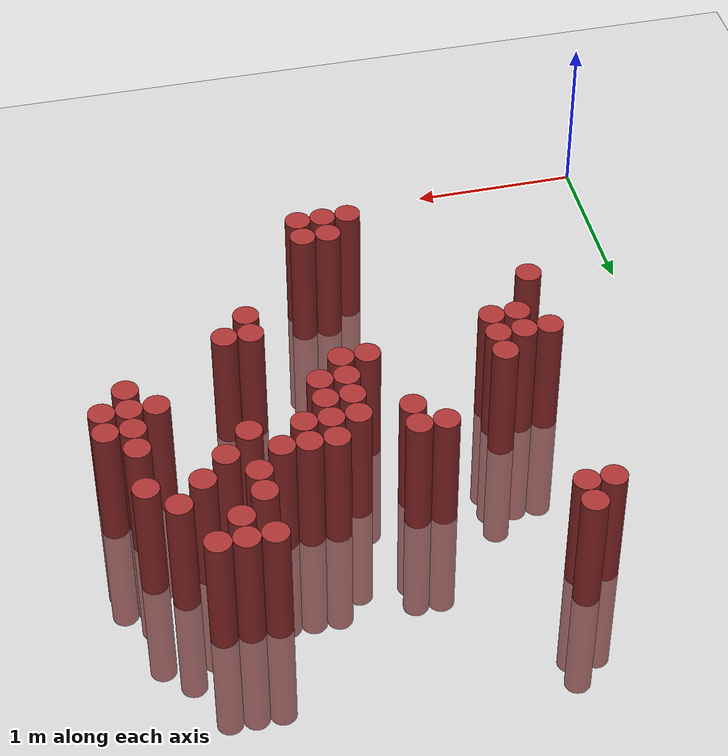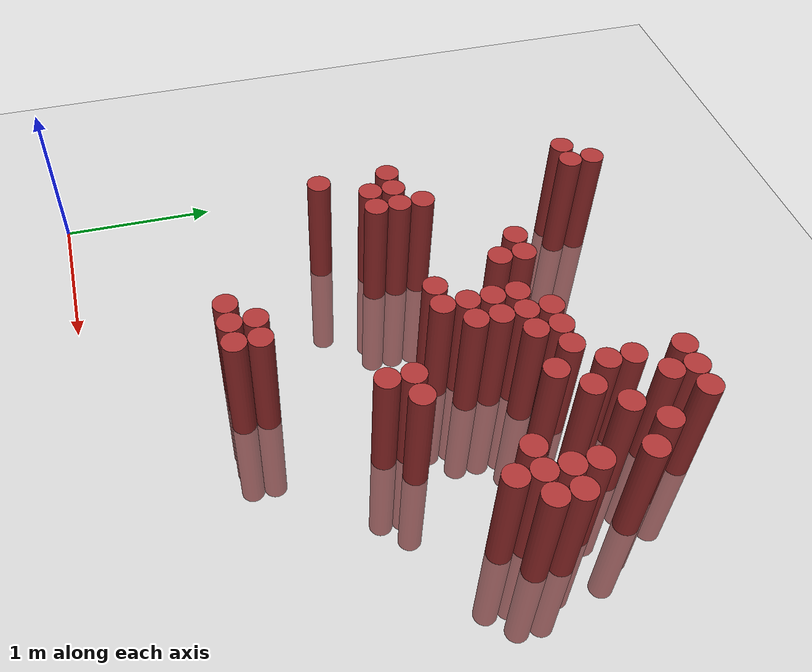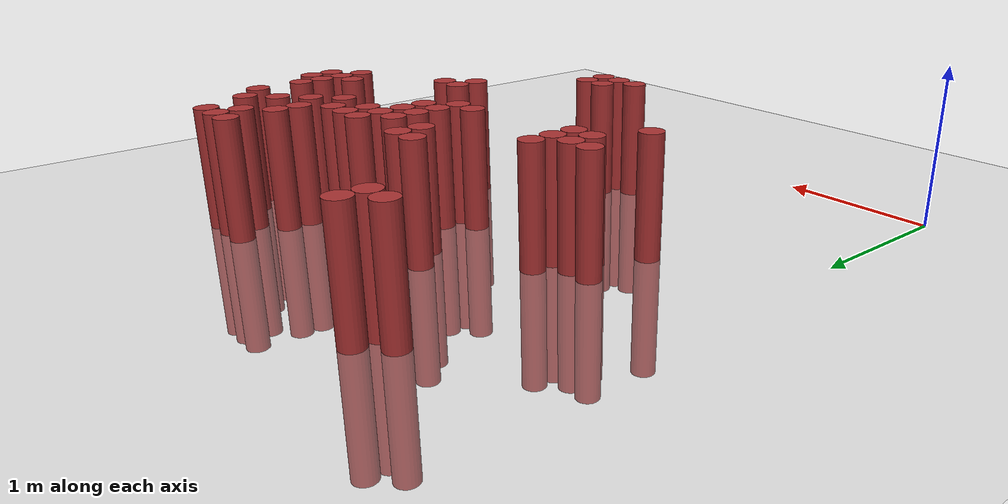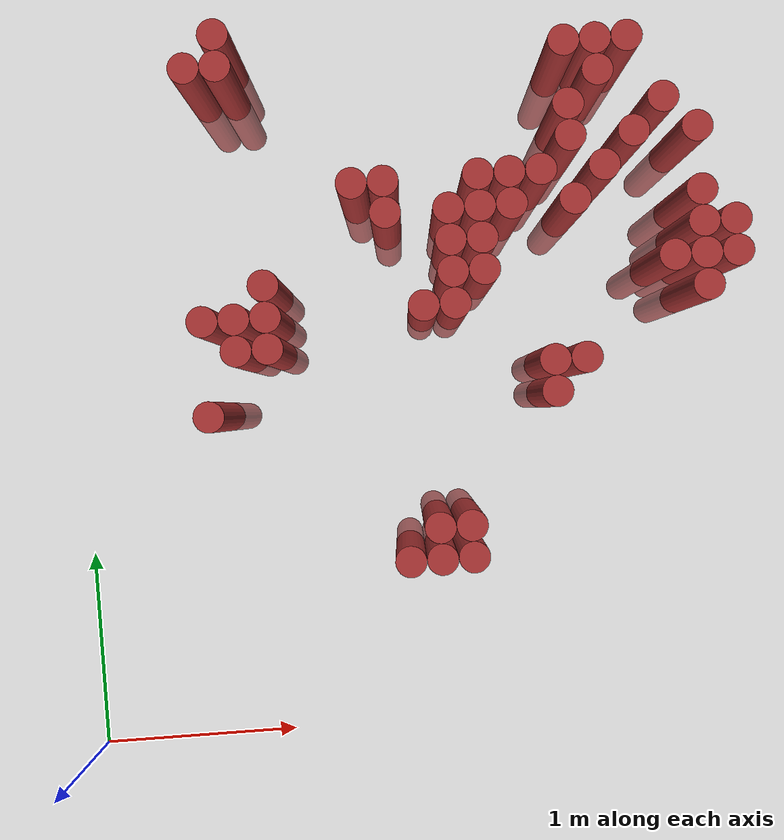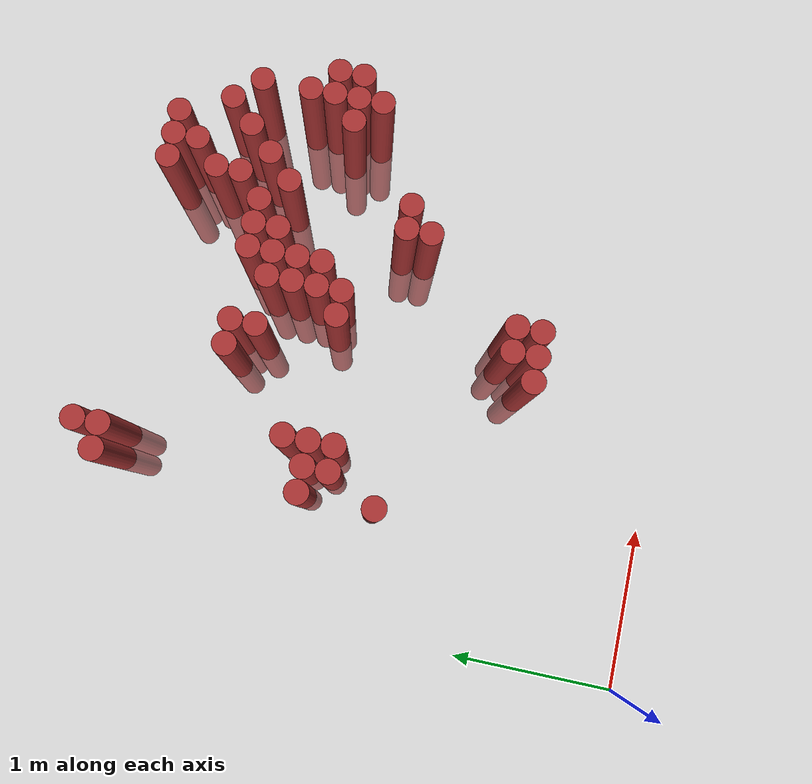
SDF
<sdf version="1.6">
 <world name="default">
  <model name="ground_plane">
   <static>1</static>
   <link name="link">
    <collision name="collision">
     <geometry><plane><normal>0 0 1</normal><size>100 100</size></plane></geometry>
     <surface><friction><ode><mu>100</mu><mu2>50</mu2></ode></friction></surface>
    </collision>
    <visual name="visual">
     <cast_shadows>0</cast_shadows>
     <geometry><plane><normal>0 0 1</normal><size>100 100</size></plane></geometry>
     <material>
      <script><uri>file://media/materials/scripts/gazebo.material</uri><name>Gazebo/Grey</name></script>
     </material>
    </visual>
   </link>
  </model>
  <model name="unit_cylinder_385">
   <static>1</static>
   <pose>0.775000 1.675000 0.000000 0.000000 0.000000 0.000000</pose>
   <link name="link">
    <inertial>
     <mass>1</mass>
     <inertia><ixx>0.145833</ixx><ixy>0</ixy><ixz>0</ixz><iyy>0.145833</iyy><iyz>0</iyz><izz>0.125</izz></inertia>
    </inertial>
    <collision name="collision">
     <geometry><cylinder><radius>0.075000</radius><length>1.5</length></cylinder></geometry>
    </collision>
    <visual name="visual">
     <geometry><cylinder><radius>0.075000</radius><length>1.5</length></cylinder></geometry>
     <material>
      <ambient>0.648000 0.192000 0.192000 1</ambient>
      <diffuse>0.648000 0.192000 0.192000 1</diffuse>
     </material>
     <material>
      <script><name>Gazebo/Grey</name><uri>file://media/materials/scripts/gazebo.material</uri></script>
     </material>
    </visual>
   </link>
  </model>
  <model name="unit_cylinder_386">
   <static>1</static>
   <pose>0.775000 2.125000 0.000000 0.000000 0.000000 0.000000</pose>
   <link name="link">
    <inertial>
     <mass>1</mass>
     <inertia><ixx>0.145833</ixx><ixy>0</ixy><ixz>0</ixz><iyy>0.145833</iyy><iyz>0</iyz><izz>0.125</izz></inertia>
    </inertial>
    <collision name="collision">
     <geometry><cylinder><radius>0.075000</radius><length>1.5</length></cylinder></geometry>
    </collision>
    <visual name="visual">
     <geometry><cylinder><radius>0.075000</radius><length>1.5</length></cylinder></geometry>
     <material>
      <ambient>0.648000 0.192000 0.192000 1</ambient>
      <diffuse>0.648000 0.192000 0.192000 1</diffuse>
     </material>
     <material>
      <script><name>Gazebo/Grey</name><uri>file://media/materials/scripts/gazebo.material</uri></script>
     </material>
    </visual>
   </link>
  </model>
  <model name="unit_cylinder_387">
   <static>1</static>
   <pose>0.775000 3.325000 0.000000 0.000000 0.000000 0.000000</pose>
   <link name="link">
    <inertial>
     <mass>1</mass>
     <inertia><ixx>0.145833</ixx><ixy>0</ixy><ixz>0</ixz><iyy>0.145833</iyy><iyz>0</iyz><izz>0.125</izz></inertia>
    </inertial>
    <collision name="collision">
     <geometry><cylinder><radius>0.075000</radius><length>1.5</length></cylinder></geometry>
    </collision>
    <visual name="visual">
     <geometry><cylinder><radius>0.075000</radius><length>1.5</length></cylinder></geometry>
     <material>
      <ambient>0.648000 0.192000 0.192000 1</ambient>
      <diffuse>0.648000 0.192000 0.192000 1</diffuse>
     </material>
     <material>
      <script><name>Gazebo/Grey</name><uri>file://media/materials/scripts/gazebo.material</uri></script>
     </material>
    </visual>
   </link>
  </model>
  <model name="unit_cylinder_393">
   <static>1</static>
   <pose>0.925000 1.975000 0.000000 0.000000 0.000000 0.000000</pose>
   <link name="link">
    <inertial>
     <mass>1</mass>
     <inertia><ixx>0.145833</ixx><ixy>0</ixy><ixz>0</ixz><iyy>0.145833</iyy><iyz>0</iyz><izz>0.125</izz></inertia>
    </inertial>
    <collision name="collision">
     <geometry><cylinder><radius>0.075000</radius><length>1.5</length></cylinder></geometry>
    </collision>
    <visual name="visual">
     <geometry><cylinder><radius>0.075000</radius><length>1.5</length></cylinder></geometry>
     <material>
      <ambient>0.648000 0.192000 0.192000 1</ambient>
      <diffuse>0.648000 0.192000 0.192000 1</diffuse>
     </material>
     <material>
      <script><name>Gazebo/Grey</name><uri>file://media/materials/scripts/gazebo.material</uri></script>
     </material>
    </visual>
   </link>
  </model>
  <model name="unit_cylinder_394">
   <static>1</static>
   <pose>0.925000 2.125000 0.000000 0.000000 0.000000 0.000000</pose>
   <link name="link">
    <inertial>
     <mass>1</mass>
     <inertia><ixx>0.145833</ixx><ixy>0</ixy><ixz>0</ixz><iyy>0.145833</iyy><iyz>0</iyz><izz>0.125</izz></inertia>
    </inertial>
    <collision name="collision">
     <geometry><cylinder><radius>0.075000</radius><length>1.5</length></cylinder></geometry>
    </collision>
    <visual name="visual">
     <geometry><cylinder><radius>0.075000</radius><length>1.5</length></cylinder></geometry>
     <material>
      <ambient>0.648000 0.192000 0.192000 1</ambient>
      <diffuse>0.648000 0.192000 0.192000 1</diffuse>
     </material>
     <material>
      <script><name>Gazebo/Grey</name><uri>file://media/materials/scripts/gazebo.material</uri></script>
     </material>
    </visual>
   </link>
  </model>
  <model name="unit_cylinder_395">
   <static>1</static>
   <pose>0.925000 3.325000 0.000000 0.000000 0.000000 0.000000</pose>
   <link name="link">
    <inertial>
     <mass>1</mass>
     <inertia><ixx>0.145833</ixx><ixy>0</ixy><ixz>0</ixz><iyy>0.145833</iyy><iyz>0</iyz><izz>0.125</izz></inertia>
    </inertial>
    <collision name="collision">
     <geometry><cylinder><radius>0.075000</radius><length>1.5</length></cylinder></geometry>
    </collision>
    <visual name="visual">
     <geometry><cylinder><radius>0.075000</radius><length>1.5</length></cylinder></geometry>
     <material>
      <ambient>0.648000 0.192000 0.192000 1</ambient>
      <diffuse>0.648000 0.192000 0.192000 1</diffuse>
     </material>
     <material>
      <script><name>Gazebo/Grey</name><uri>file://media/materials/scripts/gazebo.material</uri></script>
     </material>
    </visual>
   </link>
  </model>
  <model name="unit_cylinder_396">
   <static>1</static>
   <pose>0.925000 3.475000 0.000000 0.000000 0.000000 0.000000</pose>
   <link name="link">
    <inertial>
     <mass>1</mass>
     <inertia><ixx>0.145833</ixx><ixy>0</ixy><ixz>0</ixz><iyy>0.145833</iyy><iyz>0</iyz><izz>0.125</izz></inertia>
    </inertial>
    <collision name="collision">
     <geometry><cylinder><radius>0.075000</radius><length>1.5</length></cylinder></geometry>
    </collision>
    <visual name="visual">
     <geometry><cylinder><radius>0.075000</radius><length>1.5</length></cylinder></geometry>
     <material>
      <ambient>0.648000 0.192000 0.192000 1</ambient>
      <diffuse>0.648000 0.192000 0.192000 1</diffuse>
     </material>
     <material>
      <script><name>Gazebo/Grey</name><uri>file://media/materials/scripts/gazebo.material</uri></script>
     </material>
    </visual>
   </link>
  </model>
  <model name="unit_cylinder_405">
   <static>1</static>
   <pose>1.075000 1.975000 0.000000 0.000000 0.000000 0.000000</pose>
   <link name="link">
    <inertial>
     <mass>1</mass>
     <inertia><ixx>0.145833</ixx><ixy>0</ixy><ixz>0</ixz><iyy>0.145833</iyy><iyz>0</iyz><izz>0.125</izz></inertia>
    </inertial>
    <collision name="collision">
     <geometry><cylinder><radius>0.075000</radius><length>1.5</length></cylinder></geometry>
    </collision>
    <visual name="visual">
     <geometry><cylinder><radius>0.075000</radius><length>1.5</length></cylinder></geometry>
     <material>
      <ambient>0.648000 0.192000 0.192000 1</ambient>
      <diffuse>0.648000 0.192000 0.192000 1</diffuse>
     </material>
     <material>
      <script><name>Gazebo/Grey</name><uri>file://media/materials/scripts/gazebo.material</uri></script>
     </material>
    </visual>
   </link>
  </model>
  <model name="unit_cylinder_406">
   <static>1</static>
   <pose>1.075000 2.125000 0.000000 0.000000 0.000000 0.000000</pose>
   <link name="link">
    <inertial>
     <mass>1</mass>
     <inertia><ixx>0.145833</ixx><ixy>0</ixy><ixz>0</ixz><iyy>0.145833</iyy><iyz>0</iyz><izz>0.125</izz></inertia>
    </inertial>
    <collision name="collision">
     <geometry><cylinder><radius>0.075000</radius><length>1.5</length></cylinder></geometry>
    </collision>
    <visual name="visual">
     <geometry><cylinder><radius>0.075000</radius><length>1.5</length></cylinder></geometry>
     <material>
      <ambient>0.648000 0.192000 0.192000 1</ambient>
      <diffuse>0.648000 0.192000 0.192000 1</diffuse>
     </material>
     <material>
      <script><name>Gazebo/Grey</name><uri>file://media/materials/scripts/gazebo.material</uri></script>
     </material>
    </visual>
   </link>
  </model>
  <model name="unit_cylinder_407">
   <static>1</static>
   <pose>1.075000 2.275000 0.000000 0.000000 0.000000 0.000000</pose>
   <link name="link">
    <inertial>
     <mass>1</mass>
     <inertia><ixx>0.145833</ixx><ixy>0</ixy><ixz>0</ixz><iyy>0.145833</iyy><iyz>0</iyz><izz>0.125</izz></inertia>
    </inertial>
    <collision name="collision">
     <geometry><cylinder><radius>0.075000</radius><length>1.5</length></cylinder></geometry>
    </collision>
    <visual name="visual">
     <geometry><cylinder><radius>0.075000</radius><length>1.5</length></cylinder></geometry>
     <material>
      <ambient>0.648000 0.192000 0.192000 1</ambient>
      <diffuse>0.648000 0.192000 0.192000 1</diffuse>
     </material>
     <material>
      <script><name>Gazebo/Grey</name><uri>file://media/materials/scripts/gazebo.material</uri></script>
     </material>
    </visual>
   </link>
  </model>
  <model name="unit_cylinder_434">
   <static>1</static>
   <pose>1.525000 2.725000 0.000000 0.000000 0.000000 0.000000</pose>
   <link name="link">
    <inertial>
     <mass>1</mass>
     <inertia><ixx>0.145833</ixx><ixy>0</ixy><ixz>0</ixz><iyy>0.145833</iyy><iyz>0</iyz><izz>0.125</izz></inertia>
    </inertial>
    <collision name="collision">
     <geometry><cylinder><radius>0.075000</radius><length>1.5</length></cylinder></geometry>
    </collision>
    <visual name="visual">
     <geometry><cylinder><radius>0.075000</radius><length>1.5</length></cylinder></geometry>
     <material>
      <ambient>0.648000 0.192000 0.192000 1</ambient>
      <diffuse>0.648000 0.192000 0.192000 1</diffuse>
     </material>
     <material>
      <script><name>Gazebo/Grey</name><uri>file://media/materials/scripts/gazebo.material</uri></script>
     </material>
    </visual>
   </link>
  </model>
  <model name="unit_cylinder_441">
   <static>1</static>
   <pose>1.675000 0.925000 0.000000 0.000000 0.000000 0.000000</pose>
   <link name="link">
    <inertial>
     <mass>1</mass>
     <inertia><ixx>0.145833</ixx><ixy>0</ixy><ixz>0</ixz><iyy>0.145833</iyy><iyz>0</iyz><izz>0.125</izz></inertia>
    </inertial>
    <collision name="collision">
     <geometry><cylinder><radius>0.075000</radius><length>1.5</length></cylinder></geometry>
    </collision>
    <visual name="visual">
     <geometry><cylinder><radius>0.075000</radius><length>1.5</length></cylinder></geometry>
     <material>
      <ambient>0.648000 0.192000 0.192000 1</ambient>
      <diffuse>0.648000 0.192000 0.192000 1</diffuse>
     </material>
     <material>
      <script><name>Gazebo/Grey</name><uri>file://media/materials/scripts/gazebo.material</uri></script>
     </material>
    </visual>
   </link>
  </model>
  <model name="unit_cylinder_442">
   <static>1</static>
   <pose>1.675000 2.575000 0.000000 0.000000 0.000000 0.000000</pose>
   <link name="link">
    <inertial>
     <mass>1</mass>
     <inertia><ixx>0.145833</ixx><ixy>0</ixy><ixz>0</ixz><iyy>0.145833</iyy><iyz>0</iyz><izz>0.125</izz></inertia>
    </inertial>
    <collision name="collision">
     <geometry><cylinder><radius>0.075000</radius><length>1.5</length></cylinder></geometry>
    </collision>
    <visual name="visual">
     <geometry><cylinder><radius>0.075000</radius><length>1.5</length></cylinder></geometry>
     <material>
      <ambient>0.648000 0.192000 0.192000 1</ambient>
      <diffuse>0.648000 0.192000 0.192000 1</diffuse>
     </material>
     <material>
      <script><name>Gazebo/Grey</name><uri>file://media/materials/scripts/gazebo.material</uri></script>
     </material>
    </visual>
   </link>
  </model>
  <model name="unit_cylinder_443">
   <static>1</static>
   <pose>1.675000 2.725000 0.000000 0.000000 0.000000 0.000000</pose>
   <link name="link">
    <inertial>
     <mass>1</mass>
     <inertia><ixx>0.145833</ixx><ixy>0</ixy><ixz>0</ixz><iyy>0.145833</iyy><iyz>0</iyz><izz>0.125</izz></inertia>
    </inertial>
    <collision name="collision">
     <geometry><cylinder><radius>0.075000</radius><length>1.5</length></cylinder></geometry>
    </collision>
    <visual name="visual">
     <geometry><cylinder><radius>0.075000</radius><length>1.5</length></cylinder></geometry>
     <material>
      <ambient>0.648000 0.192000 0.192000 1</ambient>
      <diffuse>0.648000 0.192000 0.192000 1</diffuse>
     </material>
     <material>
      <script><name>Gazebo/Grey</name><uri>file://media/materials/scripts/gazebo.material</uri></script>
     </material>
    </visual>
   </link>
  </model>
  <model name="unit_cylinder_449">
   <static>1</static>
   <pose>1.825000 0.925000 0.000000 0.000000 0.000000 0.000000</pose>
   <link name="link">
    <inertial>
     <mass>1</mass>
     <inertia><ixx>0.145833</ixx><ixy>0</ixy><ixz>0</ixz><iyy>0.145833</iyy><iyz>0</iyz><izz>0.125</izz></inertia>
    </inertial>
    <collision name="collision">
     <geometry><cylinder><radius>0.075000</radius><length>1.5</length></cylinder></geometry>
    </collision>
    <visual name="visual">
     <geometry><cylinder><radius>0.075000</radius><length>1.5</length></cylinder></geometry>
     <material>
      <ambient>0.648000 0.192000 0.192000 1</ambient>
      <diffuse>0.648000 0.192000 0.192000 1</diffuse>
     </material>
     <material>
      <script><name>Gazebo/Grey</name><uri>file://media/materials/scripts/gazebo.material</uri></script>
     </material>
    </visual>
   </link>
  </model>
  <model name="unit_cylinder_450">
   <static>1</static>
   <pose>1.825000 1.075000 0.000000 0.000000 0.000000 0.000000</pose>
   <link name="link">
    <inertial>
     <mass>1</mass>
     <inertia><ixx>0.145833</ixx><ixy>0</ixy><ixz>0</ixz><iyy>0.145833</iyy><iyz>0</iyz><izz>0.125</izz></inertia>
    </inertial>
    <collision name="collision">
     <geometry><cylinder><radius>0.075000</radius><length>1.5</length></cylinder></geometry>
    </collision>
    <visual name="visual">
     <geometry><cylinder><radius>0.075000</radius><length>1.5</length></cylinder></geometry>
     <material>
      <ambient>0.648000 0.192000 0.192000 1</ambient>
      <diffuse>0.648000 0.192000 0.192000 1</diffuse>
     </material>
     <material>
      <script><name>Gazebo/Grey</name><uri>file://media/materials/scripts/gazebo.material</uri></script>
     </material>
    </visual>
   </link>
  </model>
  <model name="unit_cylinder_451">
   <static>1</static>
   <pose>1.825000 2.125000 0.000000 0.000000 0.000000 0.000000</pose>
   <link name="link">
    <inertial>
     <mass>1</mass>
     <inertia><ixx>0.145833</ixx><ixy>0</ixy><ixz>0</ixz><iyy>0.145833</iyy><iyz>0</iyz><izz>0.125</izz></inertia>
    </inertial>
    <collision name="collision">
     <geometry><cylinder><radius>0.075000</radius><length>1.5</length></cylinder></geometry>
    </collision>
    <visual name="visual">
     <geometry><cylinder><radius>0.075000</radius><length>1.5</length></cylinder></geometry>
     <material>
      <ambient>0.648000 0.192000 0.192000 1</ambient>
      <diffuse>0.648000 0.192000 0.192000 1</diffuse>
     </material>
     <material>
      <script><name>Gazebo/Grey</name><uri>file://media/materials/scripts/gazebo.material</uri></script>
     </material>
    </visual>
   </link>
  </model>
  <model name="unit_cylinder_458">
   <static>1</static>
   <pose>1.975000 0.925000 0.000000 0.000000 0.000000 0.000000</pose>
   <link name="link">
    <inertial>
     <mass>1</mass>
     <inertia><ixx>0.145833</ixx><ixy>0</ixy><ixz>0</ixz><iyy>0.145833</iyy><iyz>0</iyz><izz>0.125</izz></inertia>
    </inertial>
    <collision name="collision">
     <geometry><cylinder><radius>0.075000</radius><length>1.5</length></cylinder></geometry>
    </collision>
    <visual name="visual">
     <geometry><cylinder><radius>0.075000</radius><length>1.5</length></cylinder></geometry>
     <material>
      <ambient>0.648000 0.192000 0.192000 1</ambient>
      <diffuse>0.648000 0.192000 0.192000 1</diffuse>
     </material>
     <material>
      <script><name>Gazebo/Grey</name><uri>file://media/materials/scripts/gazebo.material</uri></script>
     </material>
    </visual>
   </link>
  </model>
  <model name="unit_cylinder_459">
   <static>1</static>
   <pose>1.975000 1.075000 0.000000 0.000000 0.000000 0.000000</pose>
   <link name="link">
    <inertial>
     <mass>1</mass>
     <inertia><ixx>0.145833</ixx><ixy>0</ixy><ixz>0</ixz><iyy>0.145833</iyy><iyz>0</iyz><izz>0.125</izz></inertia>
    </inertial>
    <collision name="collision">
     <geometry><cylinder><radius>0.075000</radius><length>1.5</length></cylinder></geometry>
    </collision>
    <visual name="visual">
     <geometry><cylinder><radius>0.075000</radius><length>1.5</length></cylinder></geometry>
     <material>
      <ambient>0.648000 0.192000 0.192000 1</ambient>
      <diffuse>0.648000 0.192000 0.192000 1</diffuse>
     </material>
     <material>
      <script><name>Gazebo/Grey</name><uri>file://media/materials/scripts/gazebo.material</uri></script>
     </material>
    </visual>
   </link>
  </model>
  <model name="unit_cylinder_460">
   <static>1</static>
   <pose>1.975000 2.125000 0.000000 0.000000 0.000000 0.000000</pose>
   <link name="link">
    <inertial>
     <mass>1</mass>
     <inertia><ixx>0.145833</ixx><ixy>0</ixy><ixz>0</ixz><iyy>0.145833</iyy><iyz>0</iyz><izz>0.125</izz></inertia>
    </inertial>
    <collision name="collision">
     <geometry><cylinder><radius>0.075000</radius><length>1.5</length></cylinder></geometry>
    </collision>
    <visual name="visual">
     <geometry><cylinder><radius>0.075000</radius><length>1.5</length></cylinder></geometry>
     <material>
      <ambient>0.648000 0.192000 0.192000 1</ambient>
      <diffuse>0.648000 0.192000 0.192000 1</diffuse>
     </material>
     <material>
      <script><name>Gazebo/Grey</name><uri>file://media/materials/scripts/gazebo.material</uri></script>
     </material>
    </visual>
   </link>
  </model>
  <model name="unit_cylinder_461">
   <static>1</static>
   <pose>1.975000 2.275000 0.000000 0.000000 0.000000 0.000000</pose>
   <link name="link">
    <inertial>
     <mass>1</mass>
     <inertia><ixx>0.145833</ixx><ixy>0</ixy><ixz>0</ixz><iyy>0.145833</iyy><iyz>0</iyz><izz>0.125</izz></inertia>
    </inertial>
    <collision name="collision">
     <geometry><cylinder><radius>0.075000</radius><length>1.5</length></cylinder></geometry>
    </collision>
    <visual name="visual">
     <geometry><cylinder><radius>0.075000</radius><length>1.5</length></cylinder></geometry>
     <material>
      <ambient>0.648000 0.192000 0.192000 1</ambient>
      <diffuse>0.648000 0.192000 0.192000 1</diffuse>
     </material>
     <material>
      <script><name>Gazebo/Grey</name><uri>file://media/materials/scripts/gazebo.material</uri></script>
     </material>
    </visual>
   </link>
  </model>
  <model name="unit_cylinder_462">
   <static>1</static>
   <pose>1.975000 2.425000 0.000000 0.000000 0.000000 0.000000</pose>
   <link name="link">
    <inertial>
     <mass>1</mass>
     <inertia><ixx>0.145833</ixx><ixy>0</ixy><ixz>0</ixz><iyy>0.145833</iyy><iyz>0</iyz><izz>0.125</izz></inertia>
    </inertial>
    <collision name="collision">
     <geometry><cylinder><radius>0.075000</radius><length>1.5</length></cylinder></geometry>
    </collision>
    <visual name="visual">
     <geometry><cylinder><radius>0.075000</radius><length>1.5</length></cylinder></geometry>
     <material>
      <ambient>0.648000 0.192000 0.192000 1</ambient>
      <diffuse>0.648000 0.192000 0.192000 1</diffuse>
     </material>
     <material>
      <script><name>Gazebo/Grey</name><uri>file://media/materials/scripts/gazebo.material</uri></script>
     </material>
    </visual>
   </link>
  </model>
  <model name="unit_cylinder_463">
   <static>1</static>
   <pose>1.975000 2.575000 0.000000 0.000000 0.000000 0.000000</pose>
   <link name="link">
    <inertial>
     <mass>1</mass>
     <inertia><ixx>0.145833</ixx><ixy>0</ixy><ixz>0</ixz><iyy>0.145833</iyy><iyz>0</iyz><izz>0.125</izz></inertia>
    </inertial>
    <collision name="collision">
     <geometry><cylinder><radius>0.075000</radius><length>1.5</length></cylinder></geometry>
    </collision>
    <visual name="visual">
     <geometry><cylinder><radius>0.075000</radius><length>1.5</length></cylinder></geometry>
     <material>
      <ambient>0.648000 0.192000 0.192000 1</ambient>
      <diffuse>0.648000 0.192000 0.192000 1</diffuse>
     </material>
     <material>
      <script><name>Gazebo/Grey</name><uri>file://media/materials/scripts/gazebo.material</uri></script>
     </material>
    </visual>
   </link>
  </model>
  <model name="unit_cylinder_471">
   <static>1</static>
   <pose>2.125000 2.275000 0.000000 0.000000 0.000000 0.000000</pose>
   <link name="link">
    <inertial>
     <mass>1</mass>
     <inertia><ixx>0.145833</ixx><ixy>0</ixy><ixz>0</ixz><iyy>0.145833</iyy><iyz>0</iyz><izz>0.125</izz></inertia>
    </inertial>
    <collision name="collision">
     <geometry><cylinder><radius>0.075000</radius><length>1.5</length></cylinder></geometry>
    </collision>
    <visual name="visual">
     <geometry><cylinder><radius>0.075000</radius><length>1.5</length></cylinder></geometry>
     <material>
      <ambient>0.648000 0.192000 0.192000 1</ambient>
      <diffuse>0.648000 0.192000 0.192000 1</diffuse>
     </material>
     <material>
      <script><name>Gazebo/Grey</name><uri>file://media/materials/scripts/gazebo.material</uri></script>
     </material>
    </visual>
   </link>
  </model>
  <model name="unit_cylinder_472">
   <static>1</static>
   <pose>2.125000 2.425000 0.000000 0.000000 0.000000 0.000000</pose>
   <link name="link">
    <inertial>
     <mass>1</mass>
     <inertia><ixx>0.145833</ixx><ixy>0</ixy><ixz>0</ixz><iyy>0.145833</iyy><iyz>0</iyz><izz>0.125</izz></inertia>
    </inertial>
    <collision name="collision">
     <geometry><cylinder><radius>0.075000</radius><length>1.5</length></cylinder></geometry>
    </collision>
    <visual name="visual">
     <geometry><cylinder><radius>0.075000</radius><length>1.5</length></cylinder></geometry>
     <material>
      <ambient>0.648000 0.192000 0.192000 1</ambient>
      <diffuse>0.648000 0.192000 0.192000 1</diffuse>
     </material>
     <material>
      <script><name>Gazebo/Grey</name><uri>file://media/materials/scripts/gazebo.material</uri></script>
     </material>
    </visual>
   </link>
  </model>
  <model name="unit_cylinder_473">
   <static>1</static>
   <pose>2.125000 2.575000 0.000000 0.000000 0.000000 0.000000</pose>
   <link name="link">
    <inertial>
     <mass>1</mass>
     <inertia><ixx>0.145833</ixx><ixy>0</ixy><ixz>0</ixz><iyy>0.145833</iyy><iyz>0</iyz><izz>0.125</izz></inertia>
    </inertial>
    <collision name="collision">
     <geometry><cylinder><radius>0.075000</radius><length>1.5</length></cylinder></geometry>
    </collision>
    <visual name="visual">
     <geometry><cylinder><radius>0.075000</radius><length>1.5</length></cylinder></geometry>
     <material>
      <ambient>0.648000 0.192000 0.192000 1</ambient>
      <diffuse>0.648000 0.192000 0.192000 1</diffuse>
     </material>
     <material>
      <script><name>Gazebo/Grey</name><uri>file://media/materials/scripts/gazebo.material</uri></script>
     </material>
    </visual>
   </link>
  </model>
  <model name="unit_cylinder_474">
   <static>1</static>
   <pose>2.125000 2.725000 0.000000 0.000000 0.000000 0.000000</pose>
   <link name="link">
    <inertial>
     <mass>1</mass>
     <inertia><ixx>0.145833</ixx><ixy>0</ixy><ixz>0</ixz><iyy>0.145833</iyy><iyz>0</iyz><izz>0.125</izz></inertia>
    </inertial>
    <collision name="collision">
     <geometry><cylinder><radius>0.075000</radius><length>1.5</length></cylinder></geometry>
    </collision>
    <visual name="visual">
     <geometry><cylinder><radius>0.075000</radius><length>1.5</length></cylinder></geometry>
     <material>
      <ambient>0.648000 0.192000 0.192000 1</ambient>
      <diffuse>0.648000 0.192000 0.192000 1</diffuse>
     </material>
     <material>
      <script><name>Gazebo/Grey</name><uri>file://media/materials/scripts/gazebo.material</uri></script>
     </material>
    </visual>
   </link>
  </model>
  <model name="unit_cylinder_479">
   <static>1</static>
   <pose>2.275000 2.575000 0.000000 0.000000 0.000000 0.000000</pose>
   <link name="link">
    <inertial>
     <mass>1</mass>
     <inertia><ixx>0.145833</ixx><ixy>0</ixy><ixz>0</ixz><iyy>0.145833</iyy><iyz>0</iyz><izz>0.125</izz></inertia>
    </inertial>
    <collision name="collision">
     <geometry><cylinder><radius>0.075000</radius><length>1.5</length></cylinder></geometry>
    </collision>
    <visual name="visual">
     <geometry><cylinder><radius>0.075000</radius><length>1.5</length></cylinder></geometry>
     <material>
      <ambient>0.648000 0.192000 0.192000 1</ambient>
      <diffuse>0.648000 0.192000 0.192000 1</diffuse>
     </material>
     <material>
      <script><name>Gazebo/Grey</name><uri>file://media/materials/scripts/gazebo.material</uri></script>
     </material>
    </visual>
   </link>
  </model>
  <model name="unit_cylinder_480">
   <static>1</static>
   <pose>2.275000 2.725000 0.000000 0.000000 0.000000 0.000000</pose>
   <link name="link">
    <inertial>
     <mass>1</mass>
     <inertia><ixx>0.145833</ixx><ixy>0</ixy><ixz>0</ixz><iyy>0.145833</iyy><iyz>0</iyz><izz>0.125</izz></inertia>
    </inertial>
    <collision name="collision">
     <geometry><cylinder><radius>0.075000</radius><length>1.5</length></cylinder></geometry>
    </collision>
    <visual name="visual">
     <geometry><cylinder><radius>0.075000</radius><length>1.5</length></cylinder></geometry>
     <material>
      <ambient>0.648000 0.192000 0.192000 1</ambient>
      <diffuse>0.648000 0.192000 0.192000 1</diffuse>
     </material>
     <material>
      <script><name>Gazebo/Grey</name><uri>file://media/materials/scripts/gazebo.material</uri></script>
     </material>
    </visual>
   </link>
  </model>
  <model name="unit_cylinder_484">
   <static>1</static>
   <pose>2.425000 1.675000 0.000000 0.000000 0.000000 0.000000</pose>
   <link name="link">
    <inertial>
     <mass>1</mass>
     <inertia><ixx>0.145833</ixx><ixy>0</ixy><ixz>0</ixz><iyy>0.145833</iyy><iyz>0</iyz><izz>0.125</izz></inertia>
    </inertial>
    <collision name="collision">
     <geometry><cylinder><radius>0.075000</radius><length>1.5</length></cylinder></geometry>
    </collision>
    <visual name="visual">
     <geometry><cylinder><radius>0.075000</radius><length>1.5</length></cylinder></geometry>
     <material>
      <ambient>0.648000 0.192000 0.192000 1</ambient>
      <diffuse>0.648000 0.192000 0.192000 1</diffuse>
     </material>
     <material>
      <script><name>Gazebo/Grey</name><uri>file://media/materials/scripts/gazebo.material</uri></script>
     </material>
    </visual>
   </link>
  </model>
  <model name="unit_cylinder_485">
   <static>1</static>
   <pose>2.425000 1.825000 0.000000 0.000000 0.000000 0.000000</pose>
   <link name="link">
    <inertial>
     <mass>1</mass>
     <inertia><ixx>0.145833</ixx><ixy>0</ixy><ixz>0</ixz><iyy>0.145833</iyy><iyz>0</iyz><izz>0.125</izz></inertia>
    </inertial>
    <collision name="collision">
     <geometry><cylinder><radius>0.075000</radius><length>1.5</length></cylinder></geometry>
    </collision>
    <visual name="visual">
     <geometry><cylinder><radius>0.075000</radius><length>1.5</length></cylinder></geometry>
     <material>
      <ambient>0.648000 0.192000 0.192000 1</ambient>
      <diffuse>0.648000 0.192000 0.192000 1</diffuse>
     </material>
     <material>
      <script><name>Gazebo/Grey</name><uri>file://media/materials/scripts/gazebo.material</uri></script>
     </material>
    </visual>
   </link>
  </model>
  <model name="unit_cylinder_486">
   <static>1</static>
   <pose>2.425000 2.725000 0.000000 0.000000 0.000000 0.000000</pose>
   <link name="link">
    <inertial>
     <mass>1</mass>
     <inertia><ixx>0.145833</ixx><ixy>0</ixy><ixz>0</ixz><iyy>0.145833</iyy><iyz>0</iyz><izz>0.125</izz></inertia>
    </inertial>
    <collision name="collision">
     <geometry><cylinder><radius>0.075000</radius><length>1.5</length></cylinder></geometry>
    </collision>
    <visual name="visual">
     <geometry><cylinder><radius>0.075000</radius><length>1.5</length></cylinder></geometry>
     <material>
      <ambient>0.648000 0.192000 0.192000 1</ambient>
      <diffuse>0.648000 0.192000 0.192000 1</diffuse>
     </material>
     <material>
      <script><name>Gazebo/Grey</name><uri>file://media/materials/scripts/gazebo.material</uri></script>
     </material>
    </visual>
   </link>
  </model>
  <model name="unit_cylinder_492">
   <static>1</static>
   <pose>2.575000 1.825000 0.000000 0.000000 0.000000 0.000000</pose>
   <link name="link">
    <inertial>
     <mass>1</mass>
     <inertia><ixx>0.145833</ixx><ixy>0</ixy><ixz>0</ixz><iyy>0.145833</iyy><iyz>0</iyz><izz>0.125</izz></inertia>
    </inertial>
    <collision name="collision">
     <geometry><cylinder><radius>0.075000</radius><length>1.5</length></cylinder></geometry>
    </collision>
    <visual name="visual">
     <geometry><cylinder><radius>0.075000</radius><length>1.5</length></cylinder></geometry>
     <material>
      <ambient>0.648000 0.192000 0.192000 1</ambient>
      <diffuse>0.648000 0.192000 0.192000 1</diffuse>
     </material>
     <material>
      <script><name>Gazebo/Grey</name><uri>file://media/materials/scripts/gazebo.material</uri></script>
     </material>
    </visual>
   </link>
  </model>
  <model name="unit_cylinder_493">
   <static>1</static>
   <pose>2.575000 2.575000 0.000000 0.000000 0.000000 0.000000</pose>
   <link name="link">
    <inertial>
     <mass>1</mass>
     <inertia><ixx>0.145833</ixx><ixy>0</ixy><ixz>0</ixz><iyy>0.145833</iyy><iyz>0</iyz><izz>0.125</izz></inertia>
    </inertial>
    <collision name="collision">
     <geometry><cylinder><radius>0.075000</radius><length>1.5</length></cylinder></geometry>
    </collision>
    <visual name="visual">
     <geometry><cylinder><radius>0.075000</radius><length>1.5</length></cylinder></geometry>
     <material>
      <ambient>0.648000 0.192000 0.192000 1</ambient>
      <diffuse>0.648000 0.192000 0.192000 1</diffuse>
     </material>
     <material>
      <script><name>Gazebo/Grey</name><uri>file://media/materials/scripts/gazebo.material</uri></script>
     </material>
    </visual>
   </link>
  </model>
  <model name="unit_cylinder_494">
   <static>1</static>
   <pose>2.575000 2.875000 0.000000 0.000000 0.000000 0.000000</pose>
   <link name="link">
    <inertial>
     <mass>1</mass>
     <inertia><ixx>0.145833</ixx><ixy>0</ixy><ixz>0</ixz><iyy>0.145833</iyy><iyz>0</iyz><izz>0.125</izz></inertia>
    </inertial>
    <collision name="collision">
     <geometry><cylinder><radius>0.075000</radius><length>1.5</length></cylinder></geometry>
    </collision>
    <visual name="visual">
     <geometry><cylinder><radius>0.075000</radius><length>1.5</length></cylinder></geometry>
     <material>
      <ambient>0.648000 0.192000 0.192000 1</ambient>
      <diffuse>0.648000 0.192000 0.192000 1</diffuse>
     </material>
     <material>
      <script><name>Gazebo/Grey</name><uri>file://media/materials/scripts/gazebo.material</uri></script>
     </material>
    </visual>
   </link>
  </model>
  <model name="unit_cylinder_495">
   <static>1</static>
   <pose>2.575000 3.025000 0.000000 0.000000 0.000000 0.000000</pose>
   <link name="link">
    <inertial>
     <mass>1</mass>
     <inertia><ixx>0.145833</ixx><ixy>0</ixy><ixz>0</ixz><iyy>0.145833</iyy><iyz>0</iyz><izz>0.125</izz></inertia>
    </inertial>
    <collision name="collision">
     <geometry><cylinder><radius>0.075000</radius><length>1.5</length></cylinder></geometry>
    </collision>
    <visual name="visual">
     <geometry><cylinder><radius>0.075000</radius><length>1.5</length></cylinder></geometry>
     <material>
      <ambient>0.648000 0.192000 0.192000 1</ambient>
      <diffuse>0.648000 0.192000 0.192000 1</diffuse>
     </material>
     <material>
      <script><name>Gazebo/Grey</name><uri>file://media/materials/scripts/gazebo.material</uri></script>
     </material>
    </visual>
   </link>
  </model>
  <model name="unit_cylinder_496">
   <static>1</static>
   <pose>2.575000 3.325000 0.000000 0.000000 0.000000 0.000000</pose>
   <link name="link">
    <inertial>
     <mass>1</mass>
     <inertia><ixx>0.145833</ixx><ixy>0</ixy><ixz>0</ixz><iyy>0.145833</iyy><iyz>0</iyz><izz>0.125</izz></inertia>
    </inertial>
    <collision name="collision">
     <geometry><cylinder><radius>0.075000</radius><length>1.5</length></cylinder></geometry>
    </collision>
    <visual name="visual">
     <geometry><cylinder><radius>0.075000</radius><length>1.5</length></cylinder></geometry>
     <material>
      <ambient>0.648000 0.192000 0.192000 1</ambient>
      <diffuse>0.648000 0.192000 0.192000 1</diffuse>
     </material>
     <material>
      <script><name>Gazebo/Grey</name><uri>file://media/materials/scripts/gazebo.material</uri></script>
     </material>
    </visual>
   </link>
  </model>
  <model name="unit_cylinder_505">
   <static>1</static>
   <pose>2.725000 2.725000 0.000000 0.000000 0.000000 0.000000</pose>
   <link name="link">
    <inertial>
     <mass>1</mass>
     <inertia><ixx>0.145833</ixx><ixy>0</ixy><ixz>0</ixz><iyy>0.145833</iyy><iyz>0</iyz><izz>0.125</izz></inertia>
    </inertial>
    <collision name="collision">
     <geometry><cylinder><radius>0.075000</radius><length>1.5</length></cylinder></geometry>
    </collision>
    <visual name="visual">
     <geometry><cylinder><radius>0.075000</radius><length>1.5</length></cylinder></geometry>
     <material>
      <ambient>0.648000 0.192000 0.192000 1</ambient>
      <diffuse>0.648000 0.192000 0.192000 1</diffuse>
     </material>
     <material>
      <script><name>Gazebo/Grey</name><uri>file://media/materials/scripts/gazebo.material</uri></script>
     </material>
    </visual>
   </link>
  </model>
  <model name="unit_cylinder_506">
   <static>1</static>
   <pose>2.725000 3.175000 0.000000 0.000000 0.000000 0.000000</pose>
   <link name="link">
    <inertial>
     <mass>1</mass>
     <inertia><ixx>0.145833</ixx><ixy>0</ixy><ixz>0</ixz><iyy>0.145833</iyy><iyz>0</iyz><izz>0.125</izz></inertia>
    </inertial>
    <collision name="collision">
     <geometry><cylinder><radius>0.075000</radius><length>1.5</length></cylinder></geometry>
    </collision>
    <visual name="visual">
     <geometry><cylinder><radius>0.075000</radius><length>1.5</length></cylinder></geometry>
     <material>
      <ambient>0.648000 0.192000 0.192000 1</ambient>
      <diffuse>0.648000 0.192000 0.192000 1</diffuse>
     </material>
     <material>
      <script><name>Gazebo/Grey</name><uri>file://media/materials/scripts/gazebo.material</uri></script>
     </material>
    </visual>
   </link>
  </model>
  <model name="unit_cylinder_507">
   <static>1</static>
   <pose>2.725000 3.325000 0.000000 0.000000 0.000000 0.000000</pose>
   <link name="link">
    <inertial>
     <mass>1</mass>
     <inertia><ixx>0.145833</ixx><ixy>0</ixy><ixz>0</ixz><iyy>0.145833</iyy><iyz>0</iyz><izz>0.125</izz></inertia>
    </inertial>
    <collision name="collision">
     <geometry><cylinder><radius>0.075000</radius><length>1.5</length></cylinder></geometry>
    </collision>
    <visual name="visual">
     <geometry><cylinder><radius>0.075000</radius><length>1.5</length></cylinder></geometry>
     <material>
      <ambient>0.648000 0.192000 0.192000 1</ambient>
      <diffuse>0.648000 0.192000 0.192000 1</diffuse>
     </material>
     <material>
      <script><name>Gazebo/Grey</name><uri>file://media/materials/scripts/gazebo.material</uri></script>
     </material>
    </visual>
   </link>
  </model>
  <model name="unit_cylinder_519">
   <static>1</static>
   <pose>2.875000 2.875000 0.000000 0.000000 0.000000 0.000000</pose>
   <link name="link">
    <inertial>
     <mass>1</mass>
     <inertia><ixx>0.145833</ixx><ixy>0</ixy><ixz>0</ixz><iyy>0.145833</iyy><iyz>0</iyz><izz>0.125</izz></inertia>
    </inertial>
    <collision name="collision">
     <geometry><cylinder><radius>0.075000</radius><length>1.5</length></cylinder></geometry>
    </collision>
    <visual name="visual">
     <geometry><cylinder><radius>0.075000</radius><length>1.5</length></cylinder></geometry>
     <material>
      <ambient>0.648000 0.192000 0.192000 1</ambient>
      <diffuse>0.648000 0.192000 0.192000 1</diffuse>
     </material>
     <material>
      <script><name>Gazebo/Grey</name><uri>file://media/materials/scripts/gazebo.material</uri></script>
     </material>
    </visual>
   </link>
  </model>
  <model name="unit_cylinder_520">
   <static>1</static>
   <pose>2.875000 3.325000 0.000000 0.000000 0.000000 0.000000</pose>
   <link name="link">
    <inertial>
     <mass>1</mass>
     <inertia><ixx>0.145833</ixx><ixy>0</ixy><ixz>0</ixz><iyy>0.145833</iyy><iyz>0</iyz><izz>0.125</izz></inertia>
    </inertial>
    <collision name="collision">
     <geometry><cylinder><radius>0.075000</radius><length>1.5</length></cylinder></geometry>
    </collision>
    <visual name="visual">
     <geometry><cylinder><radius>0.075000</radius><length>1.5</length></cylinder></geometry>
     <material>
      <ambient>0.648000 0.192000 0.192000 1</ambient>
      <diffuse>0.648000 0.192000 0.192000 1</diffuse>
     </material>
     <material>
      <script><name>Gazebo/Grey</name><uri>file://media/materials/scripts/gazebo.material</uri></script>
     </material>
    </visual>
   </link>
  </model>
  <model name="unit_cylinder_531">
   <static>1</static>
   <pose>3.025000 2.275000 0.000000 0.000000 0.000000 0.000000</pose>
   <link name="link">
    <inertial>
     <mass>1</mass>
     <inertia><ixx>0.145833</ixx><ixy>0</ixy><ixz>0</ixz><iyy>0.145833</iyy><iyz>0</iyz><izz>0.125</izz></inertia>
    </inertial>
    <collision name="collision">
     <geometry><cylinder><radius>0.075000</radius><length>1.5</length></cylinder></geometry>
    </collision>
    <visual name="visual">
     <geometry><cylinder><radius>0.075000</radius><length>1.5</length></cylinder></geometry>
     <material>
      <ambient>0.648000 0.192000 0.192000 1</ambient>
      <diffuse>0.648000 0.192000 0.192000 1</diffuse>
     </material>
     <material>
      <script><name>Gazebo/Grey</name><uri>file://media/materials/scripts/gazebo.material</uri></script>
     </material>
    </visual>
   </link>
  </model>
  <model name="unit_cylinder_532">
   <static>1</static>
   <pose>3.025000 3.025000 0.000000 0.000000 0.000000 0.000000</pose>
   <link name="link">
    <inertial>
     <mass>1</mass>
     <inertia><ixx>0.145833</ixx><ixy>0</ixy><ixz>0</ixz><iyy>0.145833</iyy><iyz>0</iyz><izz>0.125</izz></inertia>
    </inertial>
    <collision name="collision">
     <geometry><cylinder><radius>0.075000</radius><length>1.5</length></cylinder></geometry>
    </collision>
    <visual name="visual">
     <geometry><cylinder><radius>0.075000</radius><length>1.5</length></cylinder></geometry>
     <material>
      <ambient>0.648000 0.192000 0.192000 1</ambient>
      <diffuse>0.648000 0.192000 0.192000 1</diffuse>
     </material>
     <material>
      <script><name>Gazebo/Grey</name><uri>file://media/materials/scripts/gazebo.material</uri></script>
     </material>
    </visual>
   </link>
  </model>
  <model name="unit_cylinder_543">
   <static>1</static>
   <pose>3.175000 2.125000 0.000000 0.000000 0.000000 0.000000</pose>
   <link name="link">
    <inertial>
     <mass>1</mass>
     <inertia><ixx>0.145833</ixx><ixy>0</ixy><ixz>0</ixz><iyy>0.145833</iyy><iyz>0</iyz><izz>0.125</izz></inertia>
    </inertial>
    <collision name="collision">
     <geometry><cylinder><radius>0.075000</radius><length>1.5</length></cylinder></geometry>
    </collision>
    <visual name="visual">
     <geometry><cylinder><radius>0.075000</radius><length>1.5</length></cylinder></geometry>
     <material>
      <ambient>0.648000 0.192000 0.192000 1</ambient>
      <diffuse>0.648000 0.192000 0.192000 1</diffuse>
     </material>
     <material>
      <script><name>Gazebo/Grey</name><uri>file://media/materials/scripts/gazebo.material</uri></script>
     </material>
    </visual>
   </link>
  </model>
  <model name="unit_cylinder_544">
   <static>1</static>
   <pose>3.175000 2.275000 0.000000 0.000000 0.000000 0.000000</pose>
   <link name="link">
    <inertial>
     <mass>1</mass>
     <inertia><ixx>0.145833</ixx><ixy>0</ixy><ixz>0</ixz><iyy>0.145833</iyy><iyz>0</iyz><izz>0.125</izz></inertia>
    </inertial>
    <collision name="collision">
     <geometry><cylinder><radius>0.075000</radius><length>1.5</length></cylinder></geometry>
    </collision>
    <visual name="visual">
     <geometry><cylinder><radius>0.075000</radius><length>1.5</length></cylinder></geometry>
     <material>
      <ambient>0.648000 0.192000 0.192000 1</ambient>
      <diffuse>0.648000 0.192000 0.192000 1</diffuse>
     </material>
     <material>
      <script><name>Gazebo/Grey</name><uri>file://media/materials/scripts/gazebo.material</uri></script>
     </material>
    </visual>
   </link>
  </model>
  <model name="unit_cylinder_545">
   <static>1</static>
   <pose>3.175000 2.425000 0.000000 0.000000 0.000000 0.000000</pose>
   <link name="link">
    <inertial>
     <mass>1</mass>
     <inertia><ixx>0.145833</ixx><ixy>0</ixy><ixz>0</ixz><iyy>0.145833</iyy><iyz>0</iyz><izz>0.125</izz></inertia>
    </inertial>
    <collision name="collision">
     <geometry><cylinder><radius>0.075000</radius><length>1.5</length></cylinder></geometry>
    </collision>
    <visual name="visual">
     <geometry><cylinder><radius>0.075000</radius><length>1.5</length></cylinder></geometry>
     <material>
      <ambient>0.648000 0.192000 0.192000 1</ambient>
      <diffuse>0.648000 0.192000 0.192000 1</diffuse>
     </material>
     <material>
      <script><name>Gazebo/Grey</name><uri>file://media/materials/scripts/gazebo.material</uri></script>
     </material>
    </visual>
   </link>
  </model>
  <model name="unit_cylinder_546">
   <static>1</static>
   <pose>3.175000 2.575000 0.000000 0.000000 0.000000 0.000000</pose>
   <link name="link">
    <inertial>
     <mass>1</mass>
     <inertia><ixx>0.145833</ixx><ixy>0</ixy><ixz>0</ixz><iyy>0.145833</iyy><iyz>0</iyz><izz>0.125</izz></inertia>
    </inertial>
    <collision name="collision">
     <geometry><cylinder><radius>0.075000</radius><length>1.5</length></cylinder></geometry>
    </collision>
    <visual name="visual">
     <geometry><cylinder><radius>0.075000</radius><length>1.5</length></cylinder></geometry>
     <material>
      <ambient>0.648000 0.192000 0.192000 1</ambient>
      <diffuse>0.648000 0.192000 0.192000 1</diffuse>
     </material>
     <material>
      <script><name>Gazebo/Grey</name><uri>file://media/materials/scripts/gazebo.material</uri></script>
     </material>
    </visual>
   </link>
  </model>
  <model name="unit_cylinder_547">
   <static>1</static>
   <pose>3.175000 2.875000 0.000000 0.000000 0.000000 0.000000</pose>
   <link name="link">
    <inertial>
     <mass>1</mass>
     <inertia><ixx>0.145833</ixx><ixy>0</ixy><ixz>0</ixz><iyy>0.145833</iyy><iyz>0</iyz><izz>0.125</izz></inertia>
    </inertial>
    <collision name="collision">
     <geometry><cylinder><radius>0.075000</radius><length>1.5</length></cylinder></geometry>
    </collision>
    <visual name="visual">
     <geometry><cylinder><radius>0.075000</radius><length>1.5</length></cylinder></geometry>
     <material>
      <ambient>0.648000 0.192000 0.192000 1</ambient>
      <diffuse>0.648000 0.192000 0.192000 1</diffuse>
     </material>
     <material>
      <script><name>Gazebo/Grey</name><uri>file://media/materials/scripts/gazebo.material</uri></script>
     </material>
    </visual>
   </link>
  </model>
  <model name="unit_cylinder_554">
   <static>1</static>
   <pose>3.325000 2.275000 0.000000 0.000000 0.000000 0.000000</pose>
   <link name="link">
    <inertial>
     <mass>1</mass>
     <inertia><ixx>0.145833</ixx><ixy>0</ixy><ixz>0</ixz><iyy>0.145833</iyy><iyz>0</iyz><izz>0.125</izz></inertia>
    </inertial>
    <collision name="collision">
     <geometry><cylinder><radius>0.075000</radius><length>1.5</length></cylinder></geometry>
    </collision>
    <visual name="visual">
     <geometry><cylinder><radius>0.075000</radius><length>1.5</length></cylinder></geometry>
     <material>
      <ambient>0.648000 0.192000 0.192000 1</ambient>
      <diffuse>0.648000 0.192000 0.192000 1</diffuse>
     </material>
     <material>
      <script><name>Gazebo/Grey</name><uri>file://media/materials/scripts/gazebo.material</uri></script>
     </material>
    </visual>
   </link>
  </model>
  <model name="unit_cylinder_555">
   <static>1</static>
   <pose>3.325000 2.425000 0.000000 0.000000 0.000000 0.000000</pose>
   <link name="link">
    <inertial>
     <mass>1</mass>
     <inertia><ixx>0.145833</ixx><ixy>0</ixy><ixz>0</ixz><iyy>0.145833</iyy><iyz>0</iyz><izz>0.125</izz></inertia>
    </inertial>
    <collision name="collision">
     <geometry><cylinder><radius>0.075000</radius><length>1.5</length></cylinder></geometry>
    </collision>
    <visual name="visual">
     <geometry><cylinder><radius>0.075000</radius><length>1.5</length></cylinder></geometry>
     <material>
      <ambient>0.648000 0.192000 0.192000 1</ambient>
      <diffuse>0.648000 0.192000 0.192000 1</diffuse>
     </material>
     <material>
      <script><name>Gazebo/Grey</name><uri>file://media/materials/scripts/gazebo.material</uri></script>
     </material>
    </visual>
   </link>
  </model>
 </world>
</sdf>
